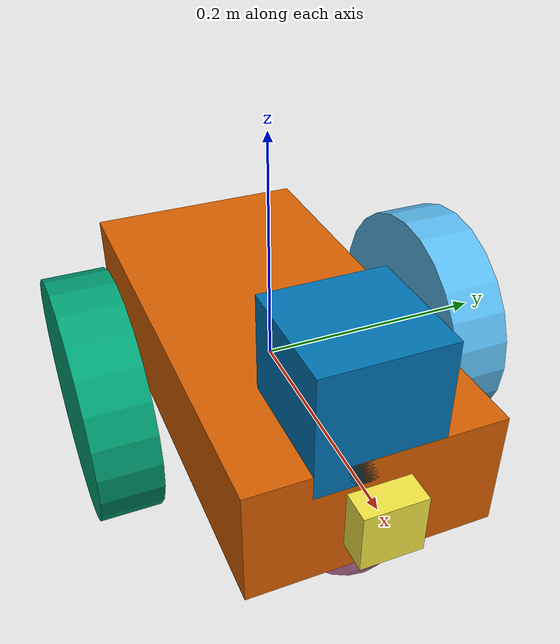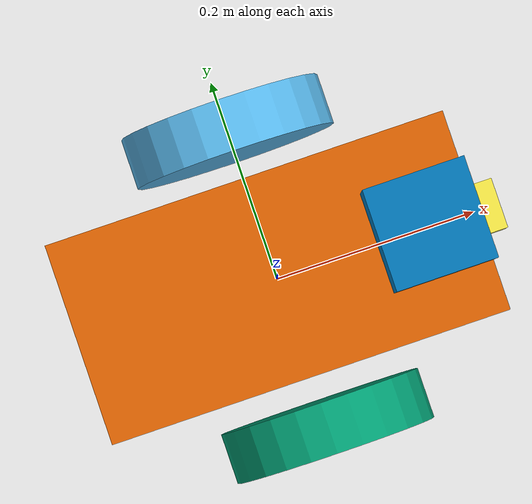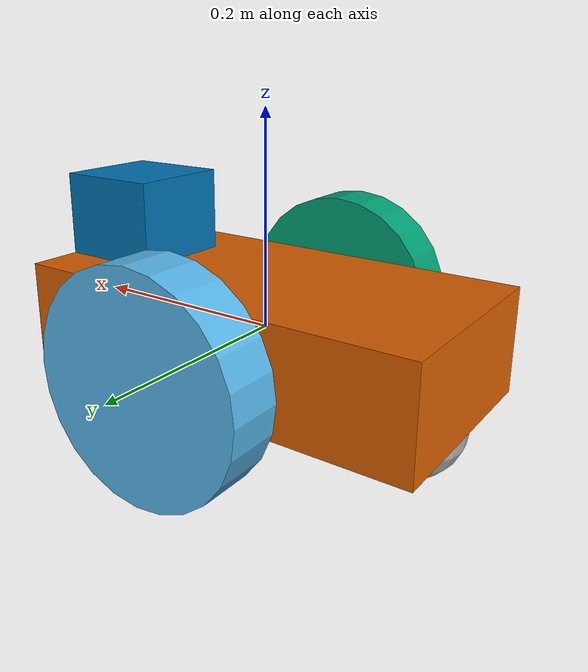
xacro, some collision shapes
<?xml version='1.0'?>

<robot name="RGBD_camera_bot" xmlns:xacro="http://www.ros.org/wiki/xacro">

  <!-- source: https://github.com/tu-darmstadt-ros-pkg/hector_models/blob/indigo-devel/hector_xacro_tools/urdf/inertia_tensors.urdf.xacro -->
  <xacro:include filename="$(find slam_project)/urdf/inertia_tensors.urdf.xacro" />

  <xacro:include filename="$(find slam_project)/urdf/RGBD_camera_bot.gazebo" />

  <link name="robot_footprint"></link>

  <joint name="robot_footprint_joint" type="fixed">
    <origin xyz="0 0 0" rpy="0 0 0" />
    <parent link="robot_footprint"/>
    <child link="chassis" />
  </joint>

  <joint type="continuous" name="left_wheel_hinge">
    <origin xyz="0 0.15 0" rpy="0 0 0"/>
    <child link="left_wheel"/>
    <parent link="chassis"/>
    <axis xyz="0 1 0" rpy="0 0 0"/>
    <limit effort="10000" velocity="1000"/>
    <joint_properties damping="1.0" friction="1.0"/>
  </joint>

  <joint type="continuous" name="right_wheel_hinge">
    <origin xyz="0 -0.15 0" rpy="0 0 0"/>
    <child link="right_wheel"/>
    <parent link="chassis"/>
    <axis xyz="0 1 0" rpy="0 0 0"/>
    <limit effort="10000" velocity="1000"/>
    <joint_properties damping="1.0" friction="1.0"/>
  </joint>

  <joint type="fixed" name="camera_joint">
    <origin xyz="0.2 0 0" rpy="0 0 0"/>
    <child link="camera_rgbd_frame"/>
    <parent link="chassis"/>
    <axis xyz="0 1 0" rpy="0 0 0"/>
    <limit effort="10000" velocity="1000"/>
    <joint_properties damping="1.0" friction="1.0"/>
  </joint>

  <joint type="fixed" name="hokuyo_joint">
    <origin xyz="0.15 0 0.08" rpy="0 0 0"/>
    <child link="hokuyo"/>
    <parent link="chassis"/>
    <axis xyz="0 1 0" rpy="0 0 0"/>
    <limit effort="10000" velocity="1000"/>
    <joint_properties damping="1.0" friction="1.0"/>
  </joint>

  <joint type="fixed" name="front_caster_joint">
    <origin xyz="0.15 0 -0.05" rpy="0 0 0"/>
    <child link="front_caster"/>
    <parent link="chassis"/>
    <axis xyz="0 1 0" rpy="0 0 0"/>
    <limit effort="10000" velocity="1000"/>
    <joint_properties damping="1.0" friction="1.0"/>
  </joint>

  <joint type="fixed" name="back_caster_joint">
    <origin xyz="-0.15 0 -0.05" rpy="0 0 0"/>
    <child link="back_caster"/>
    <parent link="chassis"/>
    <axis xyz="0 1 0" rpy="0 0 0"/>
    <limit effort="10000" velocity="1000"/>
    <joint_properties damping="1.0" friction="1.0"/>
  </joint>

  <link name='left_wheel'>
    <inertial>
      <mass value="5.0"/>
      <origin xyz="0.0 0 0" rpy=" 0 1.5707 1.5707"/>
      <inertia
          ixx="0.1" ixy="0" ixz="0"
          iyy="0.1" iyz="0"
          izz="0.1"
      />
    </inertial>

    <collision name='left_wheel_collision'>
      <origin xyz="0 0 0" rpy=" 0 1.5707 1.5707"/>
      <geometry>
        <cylinder length="0.05" radius="0.1"/>
      </geometry>
    </collision>

    <visual name='left_wheel_visual'>
      <origin xyz="0 0 0" rpy=" 0 1.5707 1.5707"/>
      <geometry>
        <cylinder length="0.05" radius="0.1"/>
      </geometry>
    </visual>
  </link>

  <link name='right_wheel'>
    <inertial>
      <mass value="5.0"/>
      <origin xyz="0.0 0 0" rpy=" 0 1.5707 1.5707"/>
      <inertia
          ixx="0.1" ixy="0" ixz="0"
          iyy="0.1" iyz="0"
          izz="0.1"
      />
    </inertial>

    <collision name='right_wheel_collision'>
      <origin xyz="0 0 0" rpy=" 0 1.5707 1.5707"/>
      <geometry>
        <cylinder length="0.05" radius="0.1"/>
      </geometry>
    </collision>

    <visual name='right_wheel_visual'>
      <origin xyz="0 0 0" rpy=" 0 1.5707 1.5707"/>
      <geometry>
        <cylinder length="0.05" radius="0.1"/>
      </geometry>
    </visual>
  </link>

  <link name='camera_rgbd_frame'>
      <xacro:inertial_cuboid_with_pose mass=".1" x_length="0.05" y_length="0.05" z_length="0.05" >
        <origin xyz="0.0 0 0" rpy=" 0 0 0"/>
      </xacro:inertial_cuboid_with_pose>

    <collision name='camera_collision'>
      <origin xyz="0 0 0" rpy=" 0 0 0"/>
      <geometry>
        <box size="0.05 0.05 0.05"/>
      </geometry>
    </collision>

    <visual name='camera_visual'>
      <origin xyz="0 0 0" rpy=" 0 0 0"/>
      <geometry>
        <box size="0.05 0.05 0.05"/>
      </geometry>
    </visual>
  </link>

  <link name='hokuyo'>
    <inertial>
      <mass value=".1"/>
      <origin xyz="0.0 0 0" rpy=" 0 0 0"/>
      <inertia
          ixx="1e-6" ixy="0" ixz="0"
          iyy="1e-6" iyz="0"
          izz="1e-6"
      />
    </inertial>

    <collision name='hokuyo_collision'>
      <origin xyz="0 0 0" rpy=" 0 0 0"/>
      <geometry>
        <box size=".1 .1 .1"/>
      </geometry>
    </collision>

    <visual name='hokuyo_visual'>
      <origin xyz="0 0 0" rpy=" 0 0 0"/>
      <geometry>
        <mesh filename="package://slam_project/meshes/hokuyo.dae"/>
      </geometry>
    </visual>
  </link>

  <link name='chassis'>
    <pose>0 0 0.1 0 0 0</pose>
    <xacro:inertial_cuboid_with_pose mass="15.0" x_length=".4" y_length="0.2" z_length="0.1" >
      <origin xyz="0.0 0 0" rpy=" 0 0 0"/>
    </xacro:inertial_cuboid_with_pose>

    <collision name='collision'>
      <origin xyz="0 0 0" rpy=" 0 0 0"/>
      <geometry>
        <box size=".4 .2 .1"/>
      </geometry>
    </collision>

    <visual name='chassis_visual'>
      <origin xyz="0 0 0" rpy=" 0 0 0"/>
      <geometry>
        <box size=".4 .2 .1"/>
      </geometry>
    </visual>
  </link>

  <link name='front_caster'>
    <collision name='front_caster_collision'>
      <origin xyz="0 0 0" rpy=" 0 0 0"/>
      <geometry>
        <sphere radius="0.05"/>
      </geometry>
      <surface>
        <friction>
          <ode>
            <mu>0</mu>
            <mu2>0</mu2>
            <slip1>1.0</slip1>
            <slip2>1.0</slip2>
          </ode>
        </friction>
      </surface>
    </collision>

    <visual name='front_caster_visual'>
      <origin xyz="0 0 0" rpy=" 0 0 0"/>
      <geometry>
        <sphere radius="0.05"/>
      </geometry>
    </visual>

  </link>

  <link name='back_caster'>
      <collision name='back_caster_collision'>
      <origin xyz="0 0 0" rpy=" 0 0 0"/>
      <geometry>
        <sphere radius="0.05"/>
      </geometry>
      <surface>
        <friction>
          <ode>
            <mu>0</mu>
            <mu2>0</mu2>
            <slip1>1.0</slip1>
            <slip2>1.0</slip2>
          </ode>
        </friction>
      </surface>
    </collision>

    <visual name='back_caster_visual'>
      <origin xyz="0 0 0" rpy=" 0 0 0"/>
      <geometry>
        <sphere radius="0.05"/>
      </geometry>
    </visual>
  </link>

</robot>
